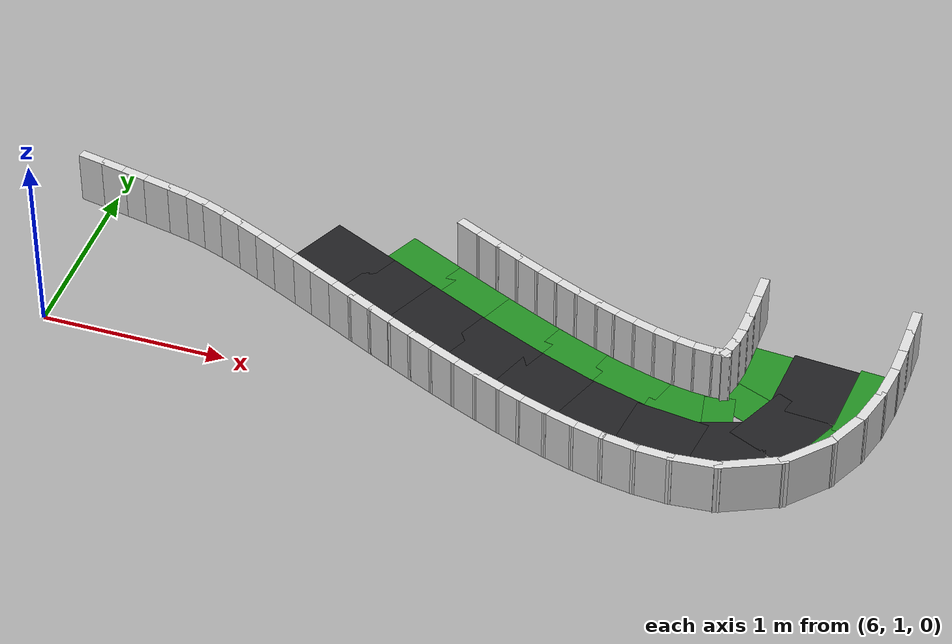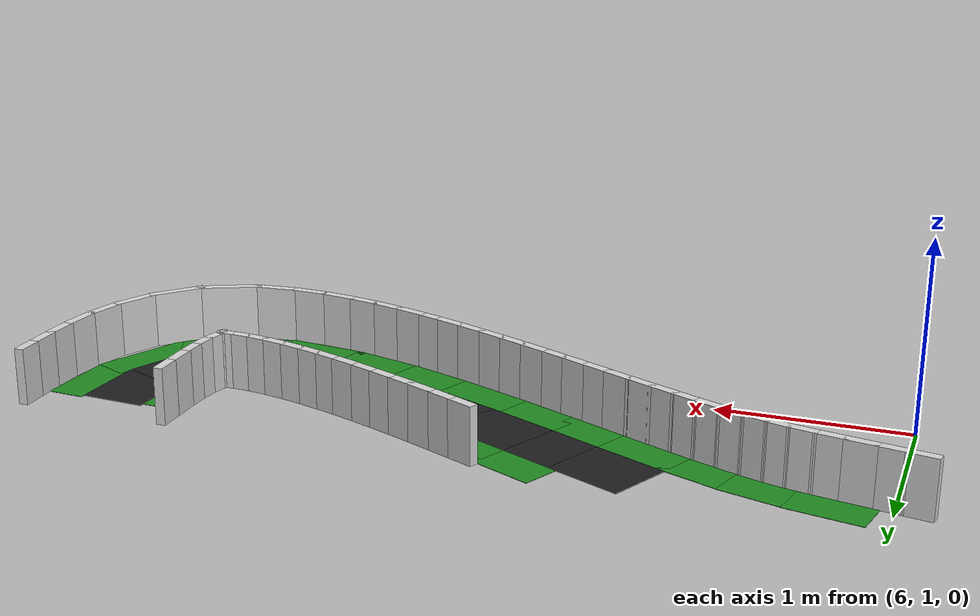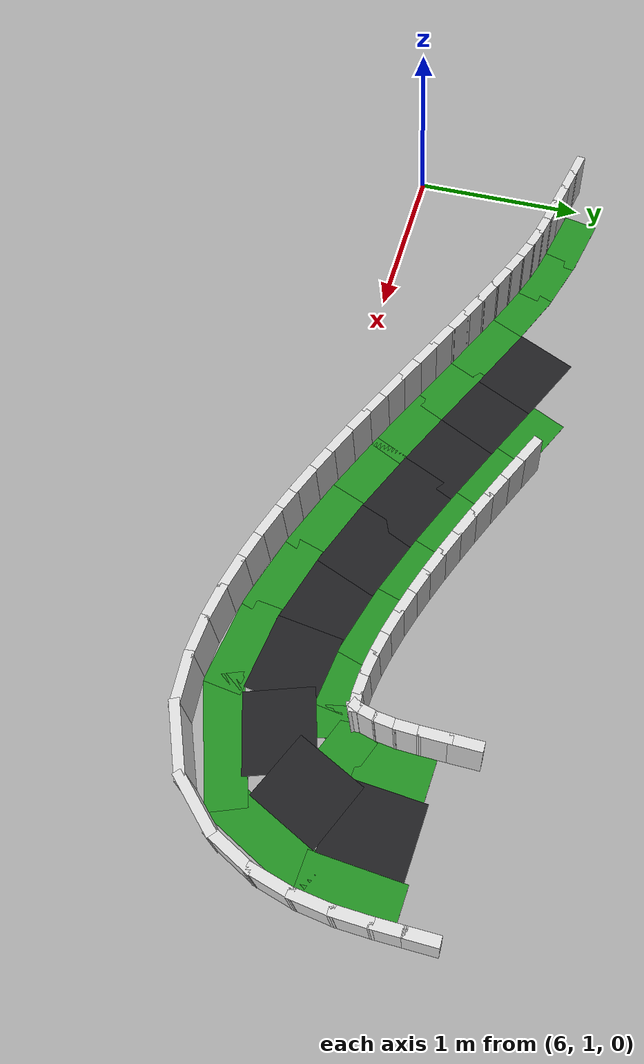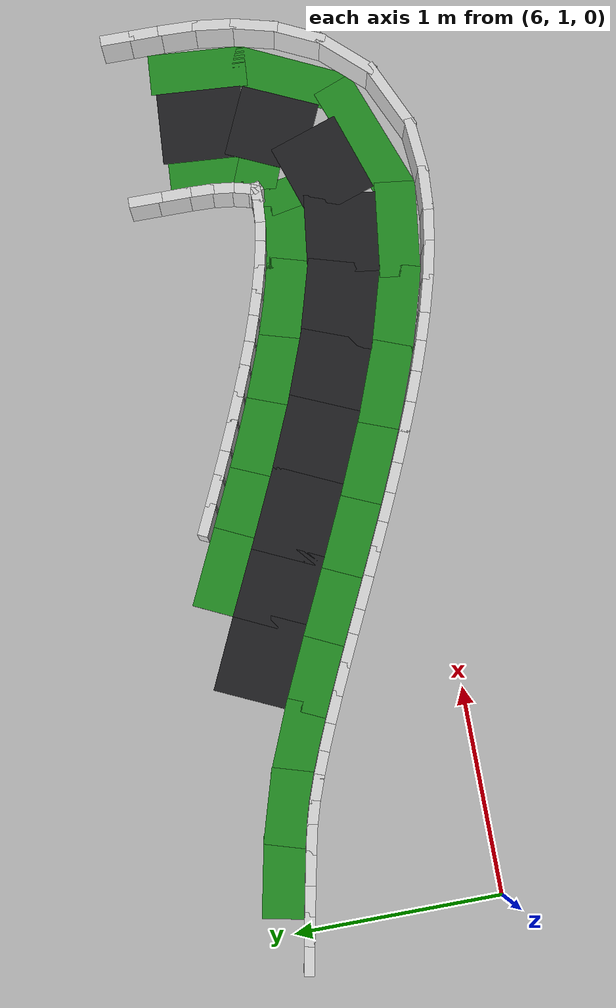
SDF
<sdf version="1.8">
 <world name="it_arena_track">
  <model name="it_arena_track_static">
   <static>true</static>
   <link name="surface_main_110">
    <pose>7.3139 1.9217 0.0015 0 0 -0.43741</pose>
    <collision name="surface_main_110_col">
     <geometry><box><size>0.4139 0.3500 0.0030</size></box></geometry>
    </collision>
    <visual name="surface_main_110_vis">
     <geometry><box><size>0.4139 0.3500 0.0030</size></box></geometry>
     <material><ambient>0.12 0.12 0.13 1</ambient><diffuse>0.12 0.12 0.13 1</diffuse></material>
    </visual>
   </link>
   <link name="surface_main_111">
    <pose>7.6302 1.7719 0.0015 0 0 -0.44731</pose>
    <collision name="surface_main_111_col">
     <geometry><box><size>0.3910 0.3500 0.0030</size></box></geometry>
    </collision>
    <visual name="surface_main_111_vis">
     <geometry><box><size>0.3910 0.3500 0.0030</size></box></geometry>
     <material><ambient>0.12 0.12 0.13 1</ambient><diffuse>0.12 0.12 0.13 1</diffuse></material>
    </visual>
   </link>
   <link name="surface_main_112">
    <pose>7.9464 1.6220 0.0015 0 0 -0.43861</pose>
    <collision name="surface_main_112_col">
     <geometry><box><size>0.4139 0.3500 0.0030</size></box></geometry>
    </collision>
    <visual name="surface_main_112_vis">
     <geometry><box><size>0.4139 0.3500 0.0030</size></box></geometry>
     <material><ambient>0.12 0.12 0.13 1</ambient><diffuse>0.12 0.12 0.13 1</diffuse></material>
    </visual>
   </link>
   <link name="surface_main_113">
    <pose>8.2742 1.4733 0.0015 0 0 -0.41276</pose>
    <collision name="surface_main_113_col">
     <geometry><box><size>0.4139 0.3500 0.0030</size></box></geometry>
    </collision>
    <visual name="surface_main_113_vis">
     <geometry><box><size>0.4139 0.3500 0.0030</size></box></geometry>
     <material><ambient>0.12 0.12 0.13 1</ambient><diffuse>0.12 0.12 0.13 1</diffuse></material>
    </visual>
   </link>
   <link name="surface_main_114">
    <pose>8.5977 1.3404 0.0015 0 0 -0.36582</pose>
    <collision name="surface_main_114_col">
     <geometry><box><size>0.3909 0.3500 0.0030</size></box></geometry>
    </collision>
    <visual name="surface_main_114_vis">
     <geometry><box><size>0.3909 0.3500 0.0030</size></box></geometry>
     <material><ambient>0.12 0.12 0.13 1</ambient><diffuse>0.12 0.12 0.13 1</diffuse></material>
    </visual>
   </link>
   <link name="surface_main_115">
    <pose>8.9291 1.2290 0.0015 0 0 -0.28471</pose>
    <collision name="surface_main_115_col">
     <geometry><box><size>0.4137 0.3500 0.0030</size></box></geometry>
    </collision>
    <visual name="surface_main_115_vis">
     <geometry><box><size>0.4137 0.3500 0.0030</size></box></geometry>
     <material><ambient>0.12 0.12 0.13 1</ambient><diffuse>0.12 0.12 0.13 1</diffuse></material>
    </visual>
   </link>
   <link name="surface_main_116">
    <pose>9.2699 1.1568 0.0015 0 0 -0.12832</pose>
    <collision name="surface_main_116_col">
     <geometry><box><size>0.3902 0.3500 0.0030</size></box></geometry>
    </collision>
    <visual name="surface_main_116_vis">
     <geometry><box><size>0.3902 0.3500 0.0030</size></box></geometry>
     <material><ambient>0.12 0.12 0.13 1</ambient><diffuse>0.12 0.12 0.13 1</diffuse></material>
    </visual>
   </link>
   <link name="surface_main_117">
    <pose>9.6031 1.1895 0.0015 0 0 0.31872</pose>
    <collision name="surface_main_117_col">
     <geometry><box><size>0.3995 0.3500 0.0030</size></box></geometry>
    </collision>
    <visual name="surface_main_117_vis">
     <geometry><box><size>0.3995 0.3500 0.0030</size></box></geometry>
     <material><ambient>0.12 0.12 0.13 1</ambient><diffuse>0.12 0.12 0.13 1</diffuse></material>
    </visual>
   </link>
   <link name="surface_main_118">
    <pose>9.8381 1.3964 0.0015 0 0 1.14033</pose>
    <collision name="surface_main_118_col">
     <geometry><box><size>0.3858 0.3500 0.0030</size></box></geometry>
    </collision>
    <visual name="surface_main_118_vis">
     <geometry><box><size>0.3858 0.3500 0.0030</size></box></geometry>
     <material><ambient>0.12 0.12 0.13 1</ambient><diffuse>0.12 0.12 0.13 1</diffuse></material>
    </visual>
   </link>
   <link name="surface_main_119">
    <pose>9.9215 1.7280 0.0015 0 0 1.49593</pose>
    <collision name="surface_main_119_col">
     <geometry><box><size>0.4132 0.3500 0.0030</size></box></geometry>
    </collision>
    <visual name="surface_main_119_vis">
     <geometry><box><size>0.4132 0.3500 0.0030</size></box></geometry>
     <material><ambient>0.12 0.12 0.13 1</ambient><diffuse>0.12 0.12 0.13 1</diffuse></material>
    </visual>
   </link>
   <link name="grass_main_left_106">
    <pose>7.7490 2.0200 0.0010 0 0 -0.44731</pose>
    <collision name="grass_main_left_106_col">
     <geometry><box><size>0.3910 0.2000 0.0020</size></box></geometry>
    </collision>
    <visual name="grass_main_left_106_vis">
     <geometry><box><size>0.3910 0.2000 0.0020</size></box></geometry>
     <material><ambient>0.13 0.55 0.13 1</ambient><diffuse>0.13 0.55 0.13 1</diffuse></material>
    </visual>
   </link>
   <link name="grass_main_left_107">
    <pose>8.0635 1.8708 0.0010 0 0 -0.43860</pose>
    <collision name="grass_main_left_107_col">
     <geometry><box><size>0.4097 0.2000 0.0020</size></box></geometry>
    </collision>
    <visual name="grass_main_left_107_vis">
     <geometry><box><size>0.4097 0.2000 0.0020</size></box></geometry>
     <material><ambient>0.13 0.55 0.13 1</ambient><diffuse>0.13 0.55 0.13 1</diffuse></material>
    </visual>
   </link>
   <link name="grass_main_left_108">
    <pose>8.3852 1.7249 0.0010 0 0 -0.41267</pose>
    <collision name="grass_main_left_108_col">
     <geometry><box><size>0.4029 0.2000 0.0020</size></box></geometry>
    </collision>
    <visual name="grass_main_left_108_vis">
     <geometry><box><size>0.4029 0.2000 0.0020</size></box></geometry>
     <material><ambient>0.13 0.55 0.13 1</ambient><diffuse>0.13 0.55 0.13 1</diffuse></material>
    </visual>
   </link>
   <link name="grass_main_left_109">
    <pose>8.6964 1.5969 0.0010 0 0 -0.36574</pose>
    <collision name="grass_main_left_109_col">
     <geometry><box><size>0.3713 0.2000 0.0020</size></box></geometry>
    </collision>
    <visual name="grass_main_left_109_vis">
     <geometry><box><size>0.3713 0.2000 0.0020</size></box></geometry>
     <material><ambient>0.13 0.55 0.13 1</ambient><diffuse>0.13 0.55 0.13 1</diffuse></material>
    </visual>
   </link>
   <link name="grass_main_left_110">
    <pose>9.0072 1.4924 0.0010 0 0 -0.28443</pose>
    <collision name="grass_main_left_110_col">
     <geometry><box><size>0.3833 0.2000 0.0020</size></box></geometry>
    </collision>
    <visual name="grass_main_left_110_vis">
     <geometry><box><size>0.3833 0.2000 0.0020</size></box></geometry>
     <material><ambient>0.13 0.55 0.13 1</ambient><diffuse>0.13 0.55 0.13 1</diffuse></material>
    </visual>
   </link>
   <link name="grass_main_left_111">
    <pose>9.3007 1.4279 0.0010 0 0 -0.13225</pose>
    <collision name="grass_main_left_111_col">
     <geometry><box><size>0.3100 0.2000 0.0020</size></box></geometry>
    </collision>
    <visual name="grass_main_left_111_vis">
     <geometry><box><size>0.3100 0.2000 0.0020</size></box></geometry>
     <material><ambient>0.13 0.55 0.13 1</ambient><diffuse>0.13 0.55 0.13 1</diffuse></material>
    </visual>
   </link>
   <link name="grass_main_left_112">
    <pose>9.5022 1.4224 0.0010 0 0 0.18026</pose>
    <collision name="grass_main_left_112_col">
     <geometry><box><size>0.1587 0.2000 0.0020</size></box></geometry>
    </collision>
    <visual name="grass_main_left_112_vis">
     <geometry><box><size>0.1587 0.2000 0.0020</size></box></geometry>
     <material><ambient>0.13 0.55 0.13 1</ambient><diffuse>0.13 0.55 0.13 1</diffuse></material>
    </visual>
   </link>
   <link name="grass_main_left_113">
    <pose>9.6042 1.5183 0.0010 0 0 1.18345</pose>
    <collision name="grass_main_left_113_col">
     <geometry><box><size>0.2075 0.2000 0.0020</size></box></geometry>
    </collision>
    <visual name="grass_main_left_113_vis">
     <geometry><box><size>0.2075 0.2000 0.0020</size></box></geometry>
     <material><ambient>0.13 0.55 0.13 1</ambient><diffuse>0.13 0.55 0.13 1</diffuse></material>
    </visual>
   </link>
   <link name="grass_main_left_114">
    <pose>9.6491 1.7553 0.0010 0 0 1.50015</pose>
    <collision name="grass_main_left_114_col">
     <geometry><box><size>0.3538 0.2000 0.0020</size></box></geometry>
    </collision>
    <visual name="grass_main_left_114_vis">
     <geometry><box><size>0.3538 0.2000 0.0020</size></box></geometry>
     <material><ambient>0.13 0.55 0.13 1</ambient><diffuse>0.13 0.55 0.13 1</diffuse></material>
    </visual>
   </link>
   <link name="grass_main_right_101">
    <pose>6.2707 1.9996 0.0010 0 0 -0.20604</pose>
    <collision name="grass_main_right_101_col">
     <geometry><box><size>0.3888 0.2000 0.0020</size></box></geometry>
    </collision>
    <visual name="grass_main_right_101_vis">
     <geometry><box><size>0.3888 0.2000 0.0020</size></box></geometry>
     <material><ambient>0.13 0.55 0.13 1</ambient><diffuse>0.13 0.55 0.13 1</diffuse></material>
    </visual>
   </link>
   <link name="grass_main_right_102">
    <pose>6.5877 1.9191 0.0010 0 0 -0.29395</pose>
    <collision name="grass_main_right_102_col">
     <geometry><box><size>0.3642 0.2000 0.0020</size></box></geometry>
    </collision>
    <visual name="grass_main_right_102_vis">
     <geometry><box><size>0.3642 0.2000 0.0020</size></box></geometry>
     <material><ambient>0.13 0.55 0.13 1</ambient><diffuse>0.13 0.55 0.13 1</diffuse></material>
    </visual>
   </link>
   <link name="grass_main_right_103">
    <pose>6.8886 1.8102 0.0010 0 0 -0.39946</pose>
    <collision name="grass_main_right_103_col">
     <geometry><box><size>0.3729 0.2000 0.0020</size></box></geometry>
    </collision>
    <visual name="grass_main_right_103_vis">
     <geometry><box><size>0.3729 0.2000 0.0020</size></box></geometry>
     <material><ambient>0.13 0.55 0.13 1</ambient><diffuse>0.13 0.55 0.13 1</diffuse></material>
    </visual>
   </link>
   <link name="grass_main_right_104">
    <pose>7.1981 1.6723 0.0010 0 0 -0.43746</pose>
    <collision name="grass_main_right_104_col">
     <geometry><box><size>0.4064 0.2000 0.0020</size></box></geometry>
    </collision>
    <visual name="grass_main_right_104_vis">
     <geometry><box><size>0.4064 0.2000 0.0020</size></box></geometry>
     <material><ambient>0.13 0.55 0.13 1</ambient><diffuse>0.13 0.55 0.13 1</diffuse></material>
    </visual>
   </link>
   <link name="grass_main_right_105">
    <pose>7.5114 1.5239 0.0010 0 0 -0.44731</pose>
    <collision name="grass_main_right_105_col">
     <geometry><box><size>0.3909 0.2000 0.0020</size></box></geometry>
    </collision>
    <visual name="grass_main_right_105_vis">
     <geometry><box><size>0.3909 0.2000 0.0020</size></box></geometry>
     <material><ambient>0.13 0.55 0.13 1</ambient><diffuse>0.13 0.55 0.13 1</diffuse></material>
    </visual>
   </link>
   <link name="grass_main_right_106">
    <pose>7.8293 1.3732 0.0010 0 0 -0.43863</pose>
    <collision name="grass_main_right_106_col">
     <geometry><box><size>0.4182 0.2000 0.0020</size></box></geometry>
    </collision>
    <visual name="grass_main_right_106_vis">
     <geometry><box><size>0.4182 0.2000 0.0020</size></box></geometry>
     <material><ambient>0.13 0.55 0.13 1</ambient><diffuse>0.13 0.55 0.13 1</diffuse></material>
    </visual>
   </link>
   <link name="grass_main_right_107">
    <pose>8.1631 1.2218 0.0010 0 0 -0.41283</pose>
    <collision name="grass_main_right_107_col">
     <geometry><box><size>0.4249 0.2000 0.0020</size></box></geometry>
    </collision>
    <visual name="grass_main_right_107_vis">
     <geometry><box><size>0.4249 0.2000 0.0020</size></box></geometry>
     <material><ambient>0.13 0.55 0.13 1</ambient><diffuse>0.13 0.55 0.13 1</diffuse></material>
    </visual>
   </link>
   <link name="grass_main_right_108">
    <pose>8.4990 1.0838 0.0010 0 0 -0.36589</pose>
    <collision name="grass_main_right_108_col">
     <geometry><box><size>0.4105 0.2000 0.0020</size></box></geometry>
    </collision>
    <visual name="grass_main_right_108_vis">
     <geometry><box><size>0.4105 0.2000 0.0020</size></box></geometry>
     <material><ambient>0.13 0.55 0.13 1</ambient><diffuse>0.13 0.55 0.13 1</diffuse></material>
    </visual>
   </link>
   <link name="grass_main_right_109">
    <pose>8.8510 0.9657 0.0010 0 0 -0.28495</pose>
    <collision name="grass_main_right_109_col">
     <geometry><box><size>0.4441 0.2000 0.0020</size></box></geometry>
    </collision>
    <visual name="grass_main_right_109_vis">
     <geometry><box><size>0.4441 0.2000 0.0020</size></box></geometry>
     <material><ambient>0.13 0.55 0.13 1</ambient><diffuse>0.13 0.55 0.13 1</diffuse></material>
    </visual>
   </link>
   <link name="grass_main_right_110">
    <pose>9.2392 0.8858 0.0010 0 0 -0.12573</pose>
    <collision name="grass_main_right_110_col">
     <geometry><box><size>0.4703 0.2000 0.0020</size></box></geometry>
    </collision>
    <visual name="grass_main_right_110_vis">
     <geometry><box><size>0.4703 0.2000 0.0020</size></box></geometry>
     <material><ambient>0.13 0.55 0.13 1</ambient><diffuse>0.13 0.55 0.13 1</diffuse></material>
    </visual>
   </link>
   <link name="grass_main_right_111">
    <pose>9.7041 0.9566 0.0010 0 0 0.35283</pose>
    <collision name="grass_main_right_111_col">
     <geometry><box><size>0.6423 0.2000 0.0020</size></box></geometry>
    </collision>
    <visual name="grass_main_right_111_vis">
     <geometry><box><size>0.6423 0.2000 0.0020</size></box></geometry>
     <material><ambient>0.13 0.55 0.13 1</ambient><diffuse>0.13 0.55 0.13 1</diffuse></material>
    </visual>
   </link>
   <link name="grass_main_right_112">
    <pose>10.0720 1.2745 0.0010 0 0 1.12449</pose>
    <collision name="grass_main_right_112_col">
     <geometry><box><size>0.5644 0.2000 0.0020</size></box></geometry>
    </collision>
    <visual name="grass_main_right_112_vis">
     <geometry><box><size>0.5644 0.2000 0.0020</size></box></geometry>
     <material><ambient>0.13 0.55 0.13 1</ambient><diffuse>0.13 0.55 0.13 1</diffuse></material>
    </visual>
   </link>
   <link name="grass_main_right_113">
    <pose>10.1940 1.7006 0.0010 0 0 1.49277</pose>
    <collision name="grass_main_right_113_col">
     <geometry><box><size>0.4725 0.2000 0.0020</size></box></geometry>
    </collision>
    <visual name="grass_main_right_113_vis">
     <geometry><box><size>0.4725 0.2000 0.0020</size></box></geometry>
     <material><ambient>0.13 0.55 0.13 1</ambient><diffuse>0.13 0.55 0.13 1</diffuse></material>
    </visual>
   </link>
   <link name="walls_main_left_269">
    <pose>7.9825 2.0467 0.1500 0 0 -0.44477</pose>
    <collision name="walls_main_left_269_col">
     <geometry><box><size>0.1589 0.0500 0.3000</size></box></geometry>
     <surface><friction><ode><mu>0.8</mu><mu2>0.8</mu2></ode></friction></surface>
    </collision>
    <visual name="walls_main_left_269_vis">
     <geometry><box><size>0.1589 0.0500 0.3000</size></box></geometry>
     <material><ambient>0.85 0.85 0.85 1</ambient><diffuse>0.85 0.85 0.85 1</diffuse></material>
    </visual>
   </link>
   <link name="walls_main_left_270">
    <pose>8.1071 1.9876 0.1500 0 0 -0.44094</pose>
    <collision name="walls_main_left_270_col">
     <geometry><box><size>0.1582 0.0500 0.3000</size></box></geometry>
     <surface><friction><ode><mu>0.8</mu><mu2>0.8</mu2></ode></friction></surface>
    </collision>
    <visual name="walls_main_left_270_vis">
     <geometry><box><size>0.1582 0.0500 0.3000</size></box></geometry>
     <material><ambient>0.85 0.85 0.85 1</ambient><diffuse>0.85 0.85 0.85 1</diffuse></material>
    </visual>
   </link>
   <link name="walls_main_left_271">
    <pose>8.2320 1.9294 0.1500 0 0 -0.43167</pose>
    <collision name="walls_main_left_271_col">
     <geometry><box><size>0.1588 0.0500 0.3000</size></box></geometry>
     <surface><friction><ode><mu>0.8</mu><mu2>0.8</mu2></ode></friction></surface>
    </collision>
    <visual name="walls_main_left_271_vis">
     <geometry><box><size>0.1588 0.0500 0.3000</size></box></geometry>
     <material><ambient>0.85 0.85 0.85 1</ambient><diffuse>0.85 0.85 0.85 1</diffuse></material>
    </visual>
   </link>
   <link name="walls_main_left_272">
    <pose>8.3562 1.8730 0.1500 0 0 -0.42097</pose>
    <collision name="walls_main_left_272_col">
     <geometry><box><size>0.1548 0.0500 0.3000</size></box></geometry>
     <surface><friction><ode><mu>0.8</mu><mu2>0.8</mu2></ode></friction></surface>
    </collision>
    <visual name="walls_main_left_272_vis">
     <geometry><box><size>0.1548 0.0500 0.3000</size></box></geometry>
     <material><ambient>0.85 0.85 0.85 1</ambient><diffuse>0.85 0.85 0.85 1</diffuse></material>
    </visual>
   </link>
   <link name="walls_main_left_273">
    <pose>8.4779 1.8194 0.1500 0 0 -0.40811</pose>
    <collision name="walls_main_left_273_col">
     <geometry><box><size>0.1511 0.0500 0.3000</size></box></geometry>
     <surface><friction><ode><mu>0.8</mu><mu2>0.8</mu2></ode></friction></surface>
    </collision>
    <visual name="walls_main_left_273_vis">
     <geometry><box><size>0.1511 0.0500 0.3000</size></box></geometry>
     <material><ambient>0.85 0.85 0.85 1</ambient><diffuse>0.85 0.85 0.85 1</diffuse></material>
    </visual>
   </link>
   <link name="walls_main_left_274">
    <pose>8.5996 1.7678 0.1500 0 0 -0.39353</pose>
    <collision name="walls_main_left_274_col">
     <geometry><box><size>0.1529 0.0500 0.3000</size></box></geometry>
     <surface><friction><ode><mu>0.8</mu><mu2>0.8</mu2></ode></friction></surface>
    </collision>
    <visual name="walls_main_left_274_vis">
     <geometry><box><size>0.1529 0.0500 0.3000</size></box></geometry>
     <material><ambient>0.85 0.85 0.85 1</ambient><diffuse>0.85 0.85 0.85 1</diffuse></material>
    </visual>
   </link>
   <link name="walls_main_left_275">
    <pose>8.7227 1.7183 0.1500 0 0 -0.37191</pose>
    <collision name="walls_main_left_275_col">
     <geometry><box><size>0.1524 0.0500 0.3000</size></box></geometry>
     <surface><friction><ode><mu>0.8</mu><mu2>0.8</mu2></ode></friction></surface>
    </collision>
    <visual name="walls_main_left_275_vis">
     <geometry><box><size>0.1524 0.0500 0.3000</size></box></geometry>
     <material><ambient>0.85 0.85 0.85 1</ambient><diffuse>0.85 0.85 0.85 1</diffuse></material>
    </visual>
   </link>
   <link name="walls_main_left_276">
    <pose>8.8364 1.6757 0.1500 0 0 -0.34216</pose>
    <collision name="walls_main_left_276_col">
     <geometry><box><size>0.1270 0.0500 0.3000</size></box></geometry>
     <surface><friction><ode><mu>0.8</mu><mu2>0.8</mu2></ode></friction></surface>
    </collision>
    <visual name="walls_main_left_276_vis">
     <geometry><box><size>0.1270 0.0500 0.3000</size></box></geometry>
     <material><ambient>0.85 0.85 0.85 1</ambient><diffuse>0.85 0.85 0.85 1</diffuse></material>
    </visual>
   </link>
   <link name="walls_main_left_277">
    <pose>8.9471 1.6379 0.1500 0 0 -0.31652</pose>
    <collision name="walls_main_left_277_col">
     <geometry><box><size>0.1420 0.0500 0.3000</size></box></geometry>
     <surface><friction><ode><mu>0.8</mu><mu2>0.8</mu2></ode></friction></surface>
    </collision>
    <visual name="walls_main_left_277_vis">
     <geometry><box><size>0.1420 0.0500 0.3000</size></box></geometry>
     <material><ambient>0.85 0.85 0.85 1</ambient><diffuse>0.85 0.85 0.85 1</diffuse></material>
    </visual>
   </link>
   <link name="walls_main_left_278">
    <pose>9.0634 1.6022 0.1500 0 0 -0.27884</pose>
    <collision name="walls_main_left_278_col">
     <geometry><box><size>0.1377 0.0500 0.3000</size></box></geometry>
     <surface><friction><ode><mu>0.8</mu><mu2>0.8</mu2></ode></friction></surface>
    </collision>
    <visual name="walls_main_left_278_vis">
     <geometry><box><size>0.1377 0.0500 0.3000</size></box></geometry>
     <material><ambient>0.85 0.85 0.85 1</ambient><diffuse>0.85 0.85 0.85 1</diffuse></material>
    </visual>
   </link>
   <link name="walls_main_left_279">
    <pose>9.1772 1.5726 0.1500 0 0 -0.22886</pose>
    <collision name="walls_main_left_279_col">
     <geometry><box><size>0.1330 0.0500 0.3000</size></box></geometry>
     <surface><friction><ode><mu>0.8</mu><mu2>0.8</mu2></ode></friction></surface>
    </collision>
    <visual name="walls_main_left_279_vis">
     <geometry><box><size>0.1330 0.0500 0.3000</size></box></geometry>
     <material><ambient>0.85 0.85 0.85 1</ambient><diffuse>0.85 0.85 0.85 1</diffuse></material>
    </visual>
   </link>
   <link name="walls_main_left_280">
    <pose>9.2857 1.5509 0.1500 0 0 -0.16427</pose>
    <collision name="walls_main_left_280_col">
     <geometry><box><size>0.1214 0.0500 0.3000</size></box></geometry>
     <surface><friction><ode><mu>0.8</mu><mu2>0.8</mu2></ode></friction></surface>
    </collision>
    <visual name="walls_main_left_280_vis">
     <geometry><box><size>0.1214 0.0500 0.3000</size></box></geometry>
     <material><ambient>0.85 0.85 0.85 1</ambient><diffuse>0.85 0.85 0.85 1</diffuse></material>
    </visual>
   </link>
   <link name="walls_main_left_281">
    <pose>9.3852 1.5387 0.1500 0 0 -0.07555</pose>
    <collision name="walls_main_left_281_col">
     <geometry><box><size>0.1094 0.0500 0.3000</size></box></geometry>
     <surface><friction><ode><mu>0.8</mu><mu2>0.8</mu2></ode></friction></surface>
    </collision>
    <visual name="walls_main_left_281_vis">
     <geometry><box><size>0.1094 0.0500 0.3000</size></box></geometry>
     <material><ambient>0.85 0.85 0.85 1</ambient><diffuse>0.85 0.85 0.85 1</diffuse></material>
    </visual>
   </link>
   <link name="walls_main_left_282">
    <pose>9.4749 1.5368 0.1500 0 0 0.04032</pose>
    <collision name="walls_main_left_282_col">
     <geometry><box><size>0.0974 0.0500 0.3000</size></box></geometry>
     <surface><friction><ode><mu>0.8</mu><mu2>0.8</mu2></ode></friction></surface>
    </collision>
    <visual name="walls_main_left_282_vis">
     <geometry><box><size>0.0974 0.0500 0.3000</size></box></geometry>
     <material><ambient>0.85 0.85 0.85 1</ambient><diffuse>0.85 0.85 0.85 1</diffuse></material>
    </visual>
   </link>
   <link name="walls_main_left_283">
    <pose>9.4980 1.5294 0.1500 0 0 -2.70237</pose>
    <collision name="walls_main_left_283_col">
     <geometry><box><size>0.0489 0.0500 0.3000</size></box></geometry>
     <surface><friction><ode><mu>0.8</mu><mu2>0.8</mu2></ode></friction></surface>
    </collision>
    <visual name="walls_main_left_283_vis">
     <geometry><box><size>0.0489 0.0500 0.3000</size></box></geometry>
     <material><ambient>0.85 0.85 0.85 1</ambient><diffuse>0.85 0.85 0.85 1</diffuse></material>
    </visual>
   </link>
   <link name="walls_main_left_284">
    <pose>9.4791 1.5207 0.1500 0 0 0.84980</pose>
    <collision name="walls_main_left_284_col">
     <geometry><box><size>0.0009 0.0500 0.3000</size></box></geometry>
     <surface><friction><ode><mu>0.8</mu><mu2>0.8</mu2></ode></friction></surface>
    </collision>
    <visual name="walls_main_left_284_vis">
     <geometry><box><size>0.0009 0.0500 0.3000</size></box></geometry>
     <material><ambient>0.85 0.85 0.85 1</ambient><diffuse>0.85 0.85 0.85 1</diffuse></material>
    </visual>
   </link>
   <link name="walls_main_left_285">
    <pose>9.4892 1.5425 0.1500 0 0 1.13766</pose>
    <collision name="walls_main_left_285_col">
     <geometry><box><size>0.0544 0.0500 0.3000</size></box></geometry>
     <surface><friction><ode><mu>0.8</mu><mu2>0.8</mu2></ode></friction></surface>
    </collision>
    <visual name="walls_main_left_285_vis">
     <geometry><box><size>0.0544 0.0500 0.3000</size></box></geometry>
     <material><ambient>0.85 0.85 0.85 1</ambient><diffuse>0.85 0.85 0.85 1</diffuse></material>
    </visual>
   </link>
   <link name="walls_main_left_286">
    <pose>9.5089 1.6028 0.1500 0 0 1.32472</pose>
    <collision name="walls_main_left_286_col">
     <geometry><box><size>0.0923 0.0500 0.3000</size></box></geometry>
     <surface><friction><ode><mu>0.8</mu><mu2>0.8</mu2></ode></friction></surface>
    </collision>
    <visual name="walls_main_left_286_vis">
     <geometry><box><size>0.0923 0.0500 0.3000</size></box></geometry>
     <material><ambient>0.85 0.85 0.85 1</ambient><diffuse>0.85 0.85 0.85 1</diffuse></material>
    </visual>
   </link>
   <link name="walls_main_left_287">
    <pose>9.5248 1.6901 0.1500 0 0 1.44641</pose>
    <collision name="walls_main_left_287_col">
     <geometry><box><size>0.1121 0.0500 0.3000</size></box></geometry>
     <surface><friction><ode><mu>0.8</mu><mu2>0.8</mu2></ode></friction></surface>
    </collision>
    <visual name="walls_main_left_287_vis">
     <geometry><box><size>0.1121 0.0500 0.3000</size></box></geometry>
     <material><ambient>0.85 0.85 0.85 1</ambient><diffuse>0.85 0.85 0.85 1</diffuse></material>
    </visual>
   </link>
   <link name="walls_main_left_288">
    <pose>9.5327 1.7944 0.1500 0 0 1.53718</pose>
    <collision name="walls_main_left_288_col">
     <geometry><box><size>0.1288 0.0500 0.3000</size></box></geometry>
     <surface><friction><ode><mu>0.8</mu><mu2>0.8</mu2></ode></friction></surface>
    </collision>
    <visual name="walls_main_left_288_vis">
     <geometry><box><size>0.1288 0.0500 0.3000</size></box></geometry>
     <material><ambient>0.85 0.85 0.85 1</ambient><diffuse>0.85 0.85 0.85 1</diffuse></material>
    </visual>
   </link>
   <link name="walls_main_left_289">
    <pose>9.5350 1.9202 0.1500 0 0 1.56423</pose>
    <collision name="walls_main_left_289_col">
     <geometry><box><size>0.1606 0.0500 0.3000</size></box></geometry>
     <surface><friction><ode><mu>0.8</mu><mu2>0.8</mu2></ode></friction></surface>
    </collision>
    <visual name="walls_main_left_289_vis">
     <geometry><box><size>0.1606 0.0500 0.3000</size></box></geometry>
     <material><ambient>0.85 0.85 0.85 1</ambient><diffuse>0.85 0.85 0.85 1</diffuse></material>
    </visual>
   </link>
   <link name="walls_main_left_290">
    <pose>9.5360 2.0600 0.1500 0 0 1.56351</pose>
    <collision name="walls_main_left_290_col">
     <geometry><box><size>0.1608 0.0500 0.3000</size></box></geometry>
     <surface><friction><ode><mu>0.8</mu><mu2>0.8</mu2></ode></friction></surface>
    </collision>
    <visual name="walls_main_left_290_vis">
     <geometry><box><size>0.1608 0.0500 0.3000</size></box></geometry>
     <material><ambient>0.85 0.85 0.85 1</ambient><diffuse>0.85 0.85 0.85 1</diffuse></material>
    </visual>
   </link>
   <link name="walls_main_right_251">
    <pose>5.8986 1.9478 0.1500 0 0 -0.19138</pose>
    <collision name="walls_main_right_251_col">
     <geometry><box><size>0.1558 0.0500 0.3000</size></box></geometry>
     <surface><friction><ode><mu>0.8</mu><mu2>0.8</mu2></ode></friction></surface>
    </collision>
    <visual name="walls_main_right_251_vis">
     <geometry><box><size>0.1558 0.0500 0.3000</size></box></geometry>
     <material><ambient>0.85 0.85 0.85 1</ambient><diffuse>0.85 0.85 0.85 1</diffuse></material>
    </visual>
   </link>
   <link name="walls_main_right_252">
    <pose>6.0323 1.9213 0.1500 0 0 -0.19972</pose>
    <collision name="walls_main_right_252_col">
     <geometry><box><size>0.1575 0.0500 0.3000</size></box></geometry>
     <surface><friction><ode><mu>0.8</mu><mu2>0.8</mu2></ode></friction></surface>
    </collision>
    <visual name="walls_main_right_252_vis">
     <geometry><box><size>0.1575 0.0500 0.3000</size></box></geometry>
     <material><ambient>0.85 0.85 0.85 1</ambient><diffuse>0.85 0.85 0.85 1</diffuse></material>
    </visual>
   </link>
   <link name="walls_main_right_253">
    <pose>6.1675 1.8936 0.1500 0 0 -0.20532</pose>
    <collision name="walls_main_right_253_col">
     <geometry><box><size>0.1601 0.0500 0.3000</size></box></geometry>
     <surface><friction><ode><mu>0.8</mu><mu2>0.8</mu2></ode></friction></surface>
    </collision>
    <visual name="walls_main_right_253_vis">
     <geometry><box><size>0.1601 0.0500 0.3000</size></box></geometry>
     <material><ambient>0.85 0.85 0.85 1</ambient><diffuse>0.85 0.85 0.85 1</diffuse></material>
    </visual>
   </link>
   <link name="walls_main_right_254">
    <pose>6.3042 1.8650 0.1500 0 0 -0.20689</pose>
    <collision name="walls_main_right_254_col">
     <geometry><box><size>0.1610 0.0500 0.3000</size></box></geometry>
     <surface><friction><ode><mu>0.8</mu><mu2>0.8</mu2></ode></friction></surface>
    </collision>
    <visual name="walls_main_right_254_vis">
     <geometry><box><size>0.1610 0.0500 0.3000</size></box></geometry>
     <material><ambient>0.85 0.85 0.85 1</ambient><diffuse>0.85 0.85 0.85 1</diffuse></material>
    </visual>
   </link>
   <link name="walls_main_right_255">
    <pose>6.4325 1.8370 0.1500 0 0 -0.22417</pose>
    <collision name="walls_main_right_255_col">
     <geometry><box><size>0.1412 0.0500 0.3000</size></box></geometry>
     <surface><friction><ode><mu>0.8</mu><mu2>0.8</mu2></ode></friction></surface>
    </collision>
    <visual name="walls_main_right_255_vis">
     <geometry><box><size>0.1412 0.0500 0.3000</size></box></geometry>
     <material><ambient>0.85 0.85 0.85 1</ambient><diffuse>0.85 0.85 0.85 1</diffuse></material>
    </visual>
   </link>
   <link name="walls_main_right_256">
    <pose>6.5455 1.8073 0.1500 0 0 -0.29258</pose>
    <collision name="walls_main_right_256_col">
     <geometry><box><size>0.1276 0.0500 0.3000</size></box></geometry>
     <surface><friction><ode><mu>0.8</mu><mu2>0.8</mu2></ode></friction></surface>
    </collision>
    <visual name="walls_main_right_256_vis">
     <geometry><box><size>0.1276 0.0500 0.3000</size></box></geometry>
     <material><ambient>0.85 0.85 0.85 1</ambient><diffuse>0.85 0.85 0.85 1</diffuse></material>
    </visual>
   </link>
   <link name="walls_main_right_257">
    <pose>6.6554 1.7705 0.1500 0 0 -0.35070</pose>
    <collision name="walls_main_right_257_col">
     <geometry><box><size>0.1392 0.0500 0.3000</size></box></geometry>
     <surface><friction><ode><mu>0.8</mu><mu2>0.8</mu2></ode></friction></surface>
    </collision>
    <visual name="walls_main_right_257_vis">
     <geometry><box><size>0.1392 0.0500 0.3000</size></box></geometry>
     <material><ambient>0.85 0.85 0.85 1</ambient><diffuse>0.85 0.85 0.85 1</diffuse></material>
    </visual>
   </link>
   <link name="walls_main_right_258">
    <pose>6.7718 1.7255 0.1500 0 0 -0.38662</pose>
    <collision name="walls_main_right_258_col">
     <geometry><box><size>0.1477 0.0500 0.3000</size></box></geometry>
     <surface><friction><ode><mu>0.8</mu><mu2>0.8</mu2></ode></friction></surface>
    </collision>
    <visual name="walls_main_right_258_vis">
     <geometry><box><size>0.1477 0.0500 0.3000</size></box></geometry>
     <material><ambient>0.85 0.85 0.85 1</ambient><diffuse>0.85 0.85 0.85 1</diffuse></material>
    </visual>
   </link>
   <link name="walls_main_right_259">
    <pose>6.8915 1.6751 0.1500 0 0 -0.41110</pose>
    <collision name="walls_main_right_259_col">
     <geometry><box><size>0.1511 0.0500 0.3000</size></box></geometry>
     <surface><friction><ode><mu>0.8</mu><mu2>0.8</mu2></ode></friction></surface>
    </collision>
    <visual name="walls_main_right_259_vis">
     <geometry><box><size>0.1511 0.0500 0.3000</size></box></geometry>
     <material><ambient>0.85 0.85 0.85 1</ambient><diffuse>0.85 0.85 0.85 1</diffuse></material>
    </visual>
   </link>
   <link name="walls_main_right_260">
    <pose>7.0124 1.6212 0.1500 0 0 -0.42705</pose>
    <collision name="walls_main_right_260_col">
     <geometry><box><size>0.1535 0.0500 0.3000</size></box></geometry>
     <surface><friction><ode><mu>0.8</mu><mu2>0.8</mu2></ode></friction></surface>
    </collision>
    <visual name="walls_main_right_260_vis">
     <geometry><box><size>0.1535 0.0500 0.3000</size></box></geometry>
     <material><ambient>0.85 0.85 0.85 1</ambient><diffuse>0.85 0.85 0.85 1</diffuse></material>
    </visual>
   </link>
   <link name="walls_main_right_261">
    <pose>7.1350 1.5646 0.1500 0 0 -0.43710</pose>
    <collision name="walls_main_right_261_col">
     <geometry><box><size>0.1572 0.0500 0.3000</size></box></geometry>
     <surface><friction><ode><mu>0.8</mu><mu2>0.8</mu2></ode></friction></surface>
    </collision>
    <visual name="walls_main_right_261_vis">
     <geometry><box><size>0.1572 0.0500 0.3000</size></box></geometry>
     <material><ambient>0.85 0.85 0.85 1</ambient><diffuse>0.85 0.85 0.85 1</diffuse></material>
    </visual>
   </link>
   <link name="walls_main_right_262">
    <pose>7.2596 1.5059 0.1500 0 0 -0.44438</pose>
    <collision name="walls_main_right_262_col">
     <geometry><box><size>0.1595 0.0500 0.3000</size></box></geometry>
     <surface><friction><ode><mu>0.8</mu><mu2>0.8</mu2></ode></friction></surface>
    </collision>
    <visual name="walls_main_right_262_vis">
     <geometry><box><size>0.1595 0.0500 0.3000</size></box></geometry>
     <material><ambient>0.85 0.85 0.85 1</ambient><diffuse>0.85 0.85 0.85 1</diffuse></material>
    </visual>
   </link>
   <link name="walls_main_right_263">
    <pose>7.3853 1.4458 0.1500 0 0 -0.44730</pose>
    <collision name="walls_main_right_263_col">
     <geometry><box><size>0.1610 0.0500 0.3000</size></box></geometry>
     <surface><friction><ode><mu>0.8</mu><mu2>0.8</mu2></ode></friction></surface>
    </collision>
    <visual name="walls_main_right_263_vis">
     <geometry><box><size>0.1610 0.0500 0.3000</size></box></geometry>
     <material><ambient>0.85 0.85 0.85 1</ambient><diffuse>0.85 0.85 0.85 1</diffuse></material>
    </visual>
   </link>
   <link name="walls_main_right_264">
    <pose>7.5115 1.3852 0.1500 0 0 -0.44761</pose>
    <collision name="walls_main_right_264_col">
     <geometry><box><size>0.1610 0.0500 0.3000</size></box></geometry>
     <surface><friction><ode><mu>0.8</mu><mu2>0.8</mu2></ode></friction></surface>
    </collision>
    <visual name="walls_main_right_264_vis">
     <geometry><box><size>0.1610 0.0500 0.3000</size></box></geometry>
     <material><ambient>0.85 0.85 0.85 1</ambient><diffuse>0.85 0.85 0.85 1</diffuse></material>
    </visual>
   </link>
   <link name="walls_main_right_265">
    <pose>7.6386 1.3244 0.1500 0 0 -0.44477</pose>
    <collision name="walls_main_right_265_col">
     <geometry><box><size>0.1630 0.0500 0.3000</size></box></geometry>
     <surface><friction><ode><mu>0.8</mu><mu2>0.8</mu2></ode></friction></surface>
    </collision>
    <visual name="walls_main_right_265_vis">
     <geometry><box><size>0.1630 0.0500 0.3000</size></box></geometry>
     <material><ambient>0.85 0.85 0.85 1</ambient><diffuse>0.85 0.85 0.85 1</diffuse></material>
    </visual>
   </link>
   <link name="walls_main_right_266">
    <pose>7.7670 1.2635 0.1500 0 0 -0.44088</pose>
    <collision name="walls_main_right_266_col">
     <geometry><box><size>0.1638 0.0500 0.3000</size></box></geometry>
     <surface><friction><ode><mu>0.8</mu><mu2>0.8</mu2></ode></friction></surface>
    </collision>
    <visual name="walls_main_right_266_vis">
     <geometry><box><size>0.1638 0.0500 0.3000</size></box></geometry>
     <material><ambient>0.85 0.85 0.85 1</ambient><diffuse>0.85 0.85 0.85 1</diffuse></material>
    </visual>
   </link>
   <link name="walls_main_right_267">
    <pose>7.8958 1.2035 0.1500 0 0 -0.43173</pose>
    <collision name="walls_main_right_267_col">
     <geometry><box><size>0.1631 0.0500 0.3000</size></box></geometry>
     <surface><friction><ode><mu>0.8</mu><mu2>0.8</mu2></ode></friction></surface>
    </collision>
    <visual name="walls_main_right_267_vis">
     <geometry><box><size>0.1631 0.0500 0.3000</size></box></geometry>
     <material><ambient>0.85 0.85 0.85 1</ambient><diffuse>0.85 0.85 0.85 1</diffuse></material>
    </visual>
   </link>
   <link name="walls_main_right_268">
    <pose>8.0265 1.1441 0.1500 0 0 -0.42124</pose>
    <collision name="walls_main_right_268_col">
     <geometry><box><size>0.1671 0.0500 0.3000</size></box></geometry>
     <surface><friction><ode><mu>0.8</mu><mu2>0.8</mu2></ode></friction></surface>
    </collision>
    <visual name="walls_main_right_268_vis">
     <geometry><box><size>0.1671 0.0500 0.3000</size></box></geometry>
     <material><ambient>0.85 0.85 0.85 1</ambient><diffuse>0.85 0.85 0.85 1</diffuse></material>
    </visual>
   </link>
   <link name="walls_main_right_269">
    <pose>8.1610 1.0849 0.1500 0 0 -0.40802</pose>
    <collision name="walls_main_right_269_col">
     <geometry><box><size>0.1708 0.0500 0.3000</size></box></geometry>
     <surface><friction><ode><mu>0.8</mu><mu2>0.8</mu2></ode></friction></surface>
    </collision>
    <visual name="walls_main_right_269_vis">
     <geometry><box><size>0.1708 0.0500 0.3000</size></box></geometry>
     <material><ambient>0.85 0.85 0.85 1</ambient><diffuse>0.85 0.85 0.85 1</diffuse></material>
    </visual>
   </link>
   <link name="walls_main_right_270">
    <pose>8.2971 1.0273 0.1500 0 0 -0.39298</pose>
    <collision name="walls_main_right_270_col">
     <geometry><box><size>0.1691 0.0500 0.3000</size></box></geometry>
     <surface><friction><ode><mu>0.8</mu><mu2>0.8</mu2></ode></friction></surface>
    </collision>
    <visual name="walls_main_right_270_vis">
     <geometry><box><size>0.1691 0.0500 0.3000</size></box></geometry>
     <material><ambient>0.85 0.85 0.85 1</ambient><diffuse>0.85 0.85 0.85 1</diffuse></material>
    </visual>
   </link>
   <link name="walls_main_right_271">
    <pose>8.4337 0.9723 0.1500 0 0 -0.37167</pose>
    <collision name="walls_main_right_271_col">
     <geometry><box><size>0.1696 0.0500 0.3000</size></box></geometry>
     <surface><friction><ode><mu>0.8</mu><mu2>0.8</mu2></ode></friction></surface>
    </collision>
    <visual name="walls_main_right_271_vis">
     <geometry><box><size>0.1696 0.0500 0.3000</size></box></geometry>
     <material><ambient>0.85 0.85 0.85 1</ambient><diffuse>0.85 0.85 0.85 1</diffuse></material>
    </visual>
   </link>
   <link name="walls_main_right_272">
    <pose>8.5634 0.9238 0.1500 0 0 -0.34307</pose>
    <collision name="walls_main_right_272_col">
     <geometry><box><size>0.1490 0.0500 0.3000</size></box></geometry>
     <surface><friction><ode><mu>0.8</mu><mu2>0.8</mu2></ode></friction></surface>
    </collision>
    <visual name="walls_main_right_272_vis">
     <geometry><box><size>0.1490 0.0500 0.3000</size></box></geometry>
     <material><ambient>0.85 0.85 0.85 1</ambient><diffuse>0.85 0.85 0.85 1</diffuse></material>
    </visual>
   </link>
   <link name="walls_main_right_273">
    <pose>8.6988 0.8776 0.1500 0 0 -0.31636</pose>
    <collision name="walls_main_right_273_col">
     <geometry><box><size>0.1799 0.0500 0.3000</size></box></geometry>
     <surface><friction><ode><mu>0.8</mu><mu2>0.8</mu2></ode></friction></surface>
    </collision>
    <visual name="walls_main_right_273_vis">
     <geometry><box><size>0.1799 0.0500 0.3000</size></box></geometry>
     <material><ambient>0.85 0.85 0.85 1</ambient><diffuse>0.85 0.85 0.85 1</diffuse></material>
    </visual>
   </link>
   <link name="walls_main_right_274">
    <pose>8.8501 0.8314 0.1500 0 0 -0.27658</pose>
    <collision name="walls_main_right_274_col">
     <geometry><box><size>0.1842 0.0500 0.3000</size></box></geometry>
     <surface><friction><ode><mu>0.8</mu><mu2>0.8</mu2></ode></friction></surface>
    </collision>
    <visual name="walls_main_right_274_vis">
     <geometry><box><size>0.1842 0.0500 0.3000</size></box></geometry>
     <material><ambient>0.85 0.85 0.85 1</ambient><diffuse>0.85 0.85 0.85 1</diffuse></material>
    </visual>
   </link>
   <link name="walls_main_right_275">
    <pose>9.0072 0.7913 0.1500 0 0 -0.22456</pose>
    <collision name="walls_main_right_275_col">
     <geometry><box><size>0.1888 0.0500 0.3000</size></box></geometry>
     <surface><friction><ode><mu>0.8</mu><mu2>0.8</mu2></ode></friction></surface>
    </collision>
    <visual name="walls_main_right_275_vis">
     <geometry><box><size>0.1888 0.0500 0.3000</size></box></geometry>
     <material><ambient>0.85 0.85 0.85 1</ambient><diffuse>0.85 0.85 0.85 1</diffuse></material>
    </visual>
   </link>
   <link name="walls_main_right_276">
    <pose>9.1733 0.7596 0.1500 0 0 -0.15511</pose>
    <collision name="walls_main_right_276_col">
     <geometry><box><size>0.2004 0.0500 0.3000</size></box></geometry>
     <surface><friction><ode><mu>0.8</mu><mu2>0.8</mu2></ode></friction></surface>
    </collision>
    <visual name="walls_main_right_276_vis">
     <geometry><box><size>0.2004 0.0500 0.3000</size></box></geometry>
     <material><ambient>0.85 0.85 0.85 1</ambient><diffuse>0.85 0.85 0.85 1</diffuse></material>
    </visual>
   </link>
   <link name="walls_main_right_277">
    <pose>9.3516 0.7406 0.1500 0 0 -0.05933</pose>
    <collision name="walls_main_right_277_col">
     <geometry><box><size>0.2124 0.0500 0.3000</size></box></geometry>
     <surface><friction><ode><mu>0.8</mu><mu2>0.8</mu2></ode></friction></surface>
    </collision>
    <visual name="walls_main_right_277_vis">
     <geometry><box><size>0.2124 0.0500 0.3000</size></box></geometry>
     <material><ambient>0.85 0.85 0.85 1</ambient><diffuse>0.85 0.85 0.85 1</diffuse></material>
    </visual>
   </link>
   <link name="walls_main_right_278">
    <pose>9.5606 0.7449 0.1500 0 0 0.08346</pose>
    <collision name="walls_main_right_278_col">
     <geometry><box><size>0.2698 0.0500 0.3000</size></box></geometry>
     <surface><friction><ode><mu>0.8</mu><mu2>0.8</mu2></ode></friction></surface>
    </collision>
    <visual name="walls_main_right_278_vis">
     <geometry><box><size>0.2698 0.0500 0.3000</size></box></geometry>
     <material><ambient>0.85 0.85 0.85 1</ambient><diffuse>0.85 0.85 0.85 1</diffuse></material>
    </visual>
   </link>
   <link name="walls_main_right_279">
    <pose>9.8229 0.8212 0.1500 0 0 0.42886</pose>
    <collision name="walls_main_right_279_col">
     <geometry><box><size>0.3677 0.0500 0.3000</size></box></geometry>
     <surface><friction><ode><mu>0.8</mu><mu2>0.8</mu2></ode></friction></surface>
    </collision>
    <visual name="walls_main_right_279_vis">
     <geometry><box><size>0.3677 0.0500 0.3000</size></box></geometry>
     <material><ambient>0.85 0.85 0.85 1</ambient><diffuse>0.85 0.85 0.85 1</diffuse></material>
    </visual>
   </link>
   <link name="walls_main_right_280">
    <pose>10.0617 0.9902 0.1500 0 0 0.83224</pose>
    <collision name="walls_main_right_280_col">
     <geometry><box><size>0.3190 0.0500 0.3000</size></box></geometry>
     <surface><friction><ode><mu>0.8</mu><mu2>0.8</mu2></ode></friction></surface>
    </collision>
    <visual name="walls_main_right_280_vis">
     <geometry><box><size>0.3190 0.0500 0.3000</size></box></geometry>
     <material><ambient>0.85 0.85 0.85 1</ambient><diffuse>0.85 0.85 0.85 1</diffuse></material>
    </visual>
   </link>
   <link name="walls_main_right_281">
    <pose>10.2051 1.1974 0.1500 0 0 1.12493</pose>
    <collision name="walls_main_right_281_col">
     <geometry><box><size>0.2668 0.0500 0.3000</size></box></geometry>
     <surface><friction><ode><mu>0.8</mu><mu2>0.8</mu2></ode></friction></surface>
    </collision>
    <visual name="walls_main_right_281_vis">
     <geometry><box><size>0.2668 0.0500 0.3000</size></box></geometry>
     <material><ambient>0.85 0.85 0.85 1</ambient><diffuse>0.85 0.85 0.85 1</diffuse></material>
    </visual>
   </link>
   <link name="walls_main_right_282">
    <pose>10.2801 1.3987 0.1500 0 0 1.31713</pose>
    <collision name="walls_main_right_282_col">
     <geometry><box><size>0.2294 0.0500 0.3000</size></box></geometry>
     <surface><friction><ode><mu>0.8</mu><mu2>0.8</mu2></ode></friction></surface>
    </collision>
    <visual name="walls_main_right_282_vis">
     <geometry><box><size>0.2294 0.0500 0.3000</size></box></geometry>
     <material><ambient>0.85 0.85 0.85 1</ambient><diffuse>0.85 0.85 0.85 1</diffuse></material>
    </visual>
   </link>
   <link name="walls_main_right_283">
    <pose>10.3168 1.5856 0.1500 0 0 1.44326</pose>
    <collision name="walls_main_right_283_col">
     <geometry><box><size>0.2096 0.0500 0.3000</size></box></geometry>
     <surface><friction><ode><mu>0.8</mu><mu2>0.8</mu2></ode></friction></surface>
    </collision>
    <visual name="walls_main_right_283_vis">
     <geometry><box><size>0.2096 0.0500 0.3000</size></box></geometry>
     <material><ambient>0.85 0.85 0.85 1</ambient><diffuse>0.85 0.85 0.85 1</diffuse></material>
    </visual>
   </link>
   <link name="walls_main_right_284">
    <pose>10.3315 1.7599 0.1500 0 0 1.53400</pose>
    <collision name="walls_main_right_284_col">
     <geometry><box><size>0.1931 0.0500 0.3000</size></box></geometry>
     <surface><friction><ode><mu>0.8</mu><mu2>0.8</mu2></ode></friction></surface>
    </collision>
    <visual name="walls_main_right_284_vis">
     <geometry><box><size>0.1931 0.0500 0.3000</size></box></geometry>
     <material><ambient>0.85 0.85 0.85 1</ambient><diffuse>0.85 0.85 0.85 1</diffuse></material>
    </visual>
   </link>
   <link name="walls_main_right_285">
    <pose>10.3350 1.9140 0.1500 0 0 1.56422</pose>
    <collision name="walls_main_right_285_col">
     <geometry><box><size>0.1613 0.0500 0.3000</size></box></geometry>
     <surface><friction><ode><mu>0.8</mu><mu2>0.8</mu2></ode></friction></surface>
    </collision>
    <visual name="walls_main_right_285_vis">
     <geometry><box><size>0.1613 0.0500 0.3000</size></box></geometry>
     <material><ambient>0.85 0.85 0.85 1</ambient><diffuse>0.85 0.85 0.85 1</diffuse></material>
    </visual>
   </link>
   <link name="walls_main_right_286">
    <pose>10.3360 2.0542 0.1500 0 0 1.56351</pose>
    <collision name="walls_main_right_286_col">
     <geometry><box><size>0.1612 0.0500 0.3000</size></box></geometry>
     <surface><friction><ode><mu>0.8</mu><mu2>0.8</mu2></ode></friction></surface>
    </collision>
    <visual name="walls_main_right_286_vis">
     <geometry><box><size>0.1612 0.0500 0.3000</size></box></geometry>
     <material><ambient>0.85 0.85 0.85 1</ambient><diffuse>0.85 0.85 0.85 1</diffuse></material>
    </visual>
   </link>
  </model>
 </world>
</sdf>
